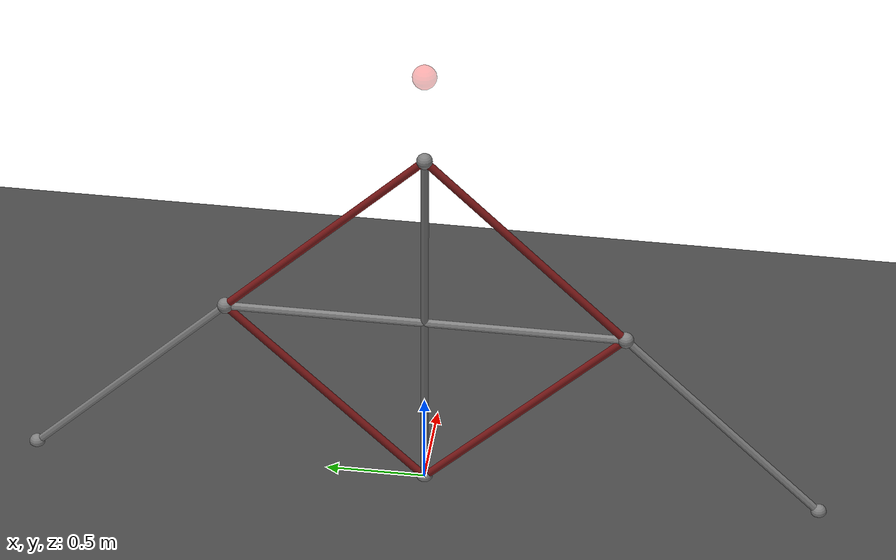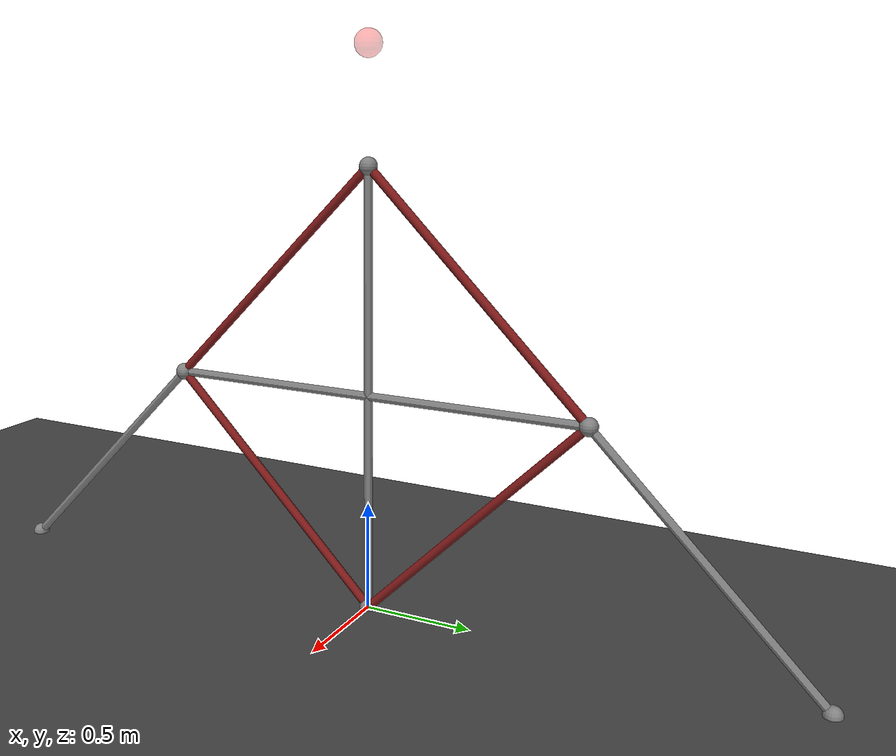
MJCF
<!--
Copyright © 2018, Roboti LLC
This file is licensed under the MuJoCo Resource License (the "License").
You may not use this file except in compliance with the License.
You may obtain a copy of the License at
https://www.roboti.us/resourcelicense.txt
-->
<mujoco model="dbar">

    <option timestep="0.02" iterations="50" solver="Newton" tolerance="1e-10" gravity = "0 0 0" collision="predefined" viscosity=".5"/>

    <size njmax="100" nconmax="40" nstack="4000"/>

    <visual>
        <rgba haze=".3 .3 .3 1"/>
    </visual>

    <default>
        <position ctrllimited="false" ctrlrange="-1 1" gear="1.0"/>
		<tendon damping="2"/>
		<geom size="0.02"/>
		<site size="0.04"/>
    </default>

    <asset>
        <texture type="skybox" builtin="gradient" rgb1="0.6 0.6 0.6" rgb2="0 0 0" width="512" height="512"/>
        <texture name="texplane" type="2d" builtin="checker" rgb1=".25 .25 .25" rgb2=".3 .3 .3" width="512" height="512" mark="cross" markrgb=".8 .8 .8"/>
        <material name="matplane" reflectance="0.3" texture="texplane" texrepeat="1 1" texuniform="true"/>
    </asset>

    <worldbody>
		<body name="floor" pos="0 0 0">
			<geom name="floor" pos="0 0 0" size="0 0 1" type="plane" material="matplane"/>
			<site name="s4" pos="0 2 0"/>
			<site name="s5" pos="0 -2 0"/>
			<site name="target" pos="0 0 2.5" size="0.06" rgba="1 0 0 .3"/>
		</body>

        <light directional="true" diffuse=".8 .8 .8" specular=".2 .2 .2" pos="0 0 5" dir="0 0 -1"/>

		<body name="bar1" pos="0 0 0">
			<geom name="bar1" type="capsule" fromto="0 0 0  0 -1 1" rgba=".5 .1 .1 1"/>
			<joint type="free" pos="0 0 0"/>
			<site name="s1s" pos="0 0 0"/>
			<site name="s1e" pos="0 -1 1"/>
		</body>

		<body name="bar2" pos="0 -1 1">
			<geom name="bar2" type="capsule" fromto="0 0 0  0 1 1" rgba=".5 .1 .1 1"/>
			<joint type="free" pos="0 0 0"/>
			<site name="s2s" pos="0 0 0"/>
			<site name="s2e" pos="0 1 1"/>
		</body>

		<body name="bar3" pos="0 0 2">
			<geom name="bar3" type="capsule" fromto="0 0 0  0 1 -1" rgba=".5 .1 .1 1"/>
			<joint type="free" pos="0 0 0"/>
			<site name="s3s" pos="0 0 0"/>
			<site name="s3e" pos="0 1 -1"/>
		</body>

		<body name="bar4" pos="0 1 1">
			<geom name="bar4" type="capsule" fromto="0 0 0  0 -1 -1" rgba=".5 .1 .1 1"/>
			<joint type="free" pos="0 0 0"/>
			<site name="s4s" pos="0 0 0"/>
			<site name="s4e" pos="0 -1 -1"/>
		</body>
    </worldbody>

	<equality>
		<connect active="true" name='lbarf1' body1='floor' body2='bar1' anchor='-0.05 0 0'/>
		<connect active="true" name='rbarf1' body1='floor' body2='bar1' anchor='0.05 0 0'/>
		<connect active="true" name='lbar12' body1='bar1' body2='bar2' anchor='-0.05 -1 1'/>
		<connect active="true" name='rbar12' body1='bar1' body2='bar2' anchor='0.05 -1 1'/>
		<connect active="true" name='lbar23' body1='bar2' body2='bar3' anchor='-0.05 1 1'/>
		<connect active="true" name='rbar23' body1='bar2' body2='bar3' anchor='0.05 1 1'/>
		<connect active="true" name='lbar34' body1='bar3' body2='bar4' anchor='-0.05 1 -1'/>
		<connect active="true" name='rbar34' body1='bar3' body2='bar4' anchor='0.05 1 -1'/>
		<connect active="true" name='lbar41' body1='bar4' body2='bar1' anchor='-0.05 -1 -1'/>
		<connect active="true" name='rbar41' body1='bar4' body2='bar1' anchor='0.05 -1 -1'/>
	</equality>

	<tendon>
        <spatial name="S1" width="0.02">
            <site site="s1s"/>
            <site site="s2e"/>
        </spatial>
		<spatial name="S2" width="0.02">
            <site site="s1e"/>
            <site site="s3e"/>
        </spatial>
		<spatial name="S3" width="0.02">
            <site site="s3e"/>
            <site site="s4"/>
        </spatial>
		<spatial name="S4" width="0.02">
            <site site="s1e"/>
            <site site="s5"/>
        </spatial>
    </tendon>

	<actuator>
        <position tendon="S1" kp="1"/>
        <position tendon="S2" kp="1"/>
		<position tendon="S3" kp="1"/>
        <position tendon="S4" kp="1"/>
    </actuator>

</mujoco>
